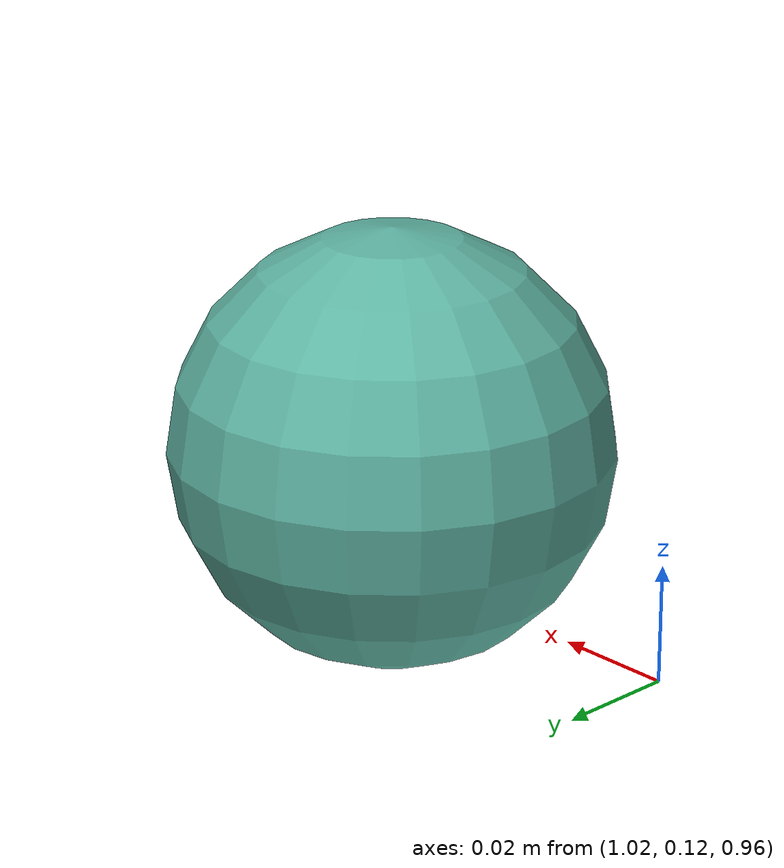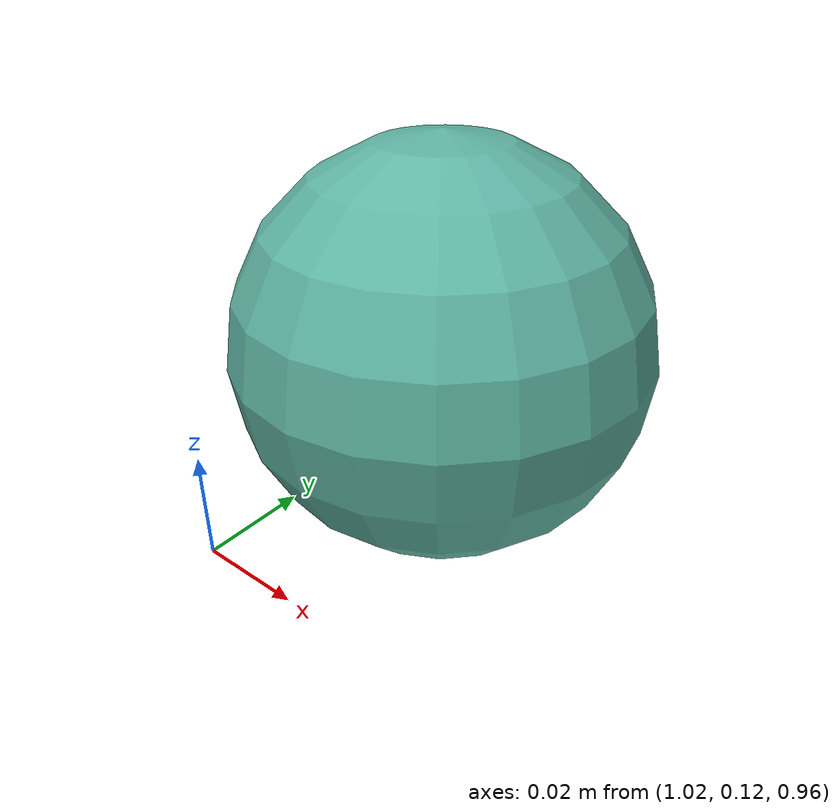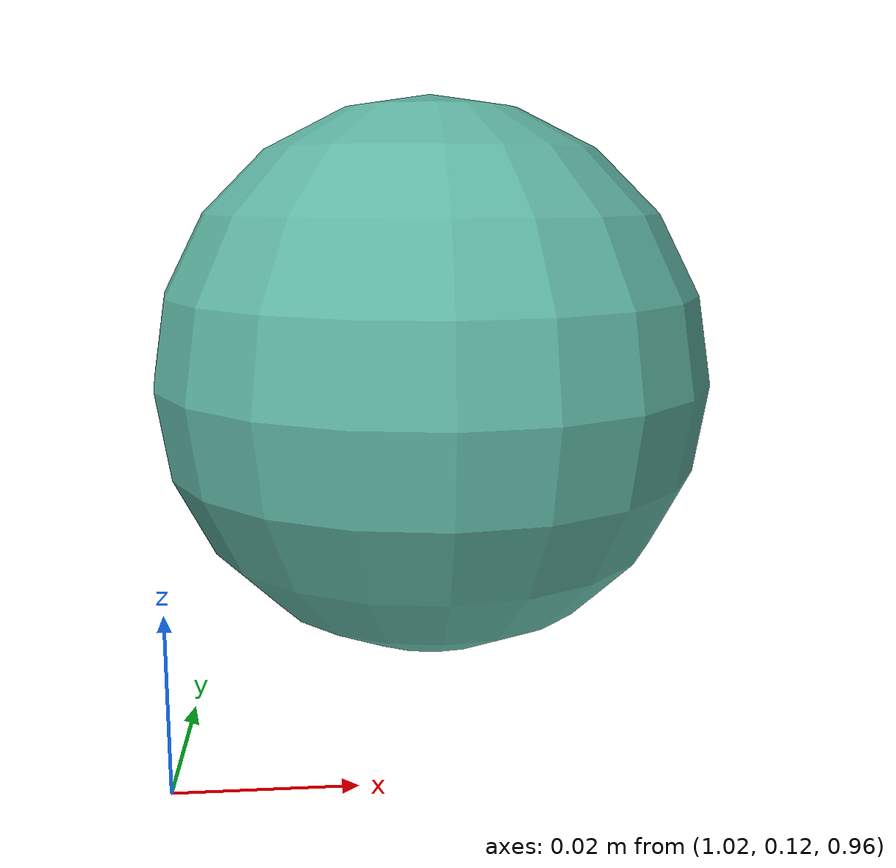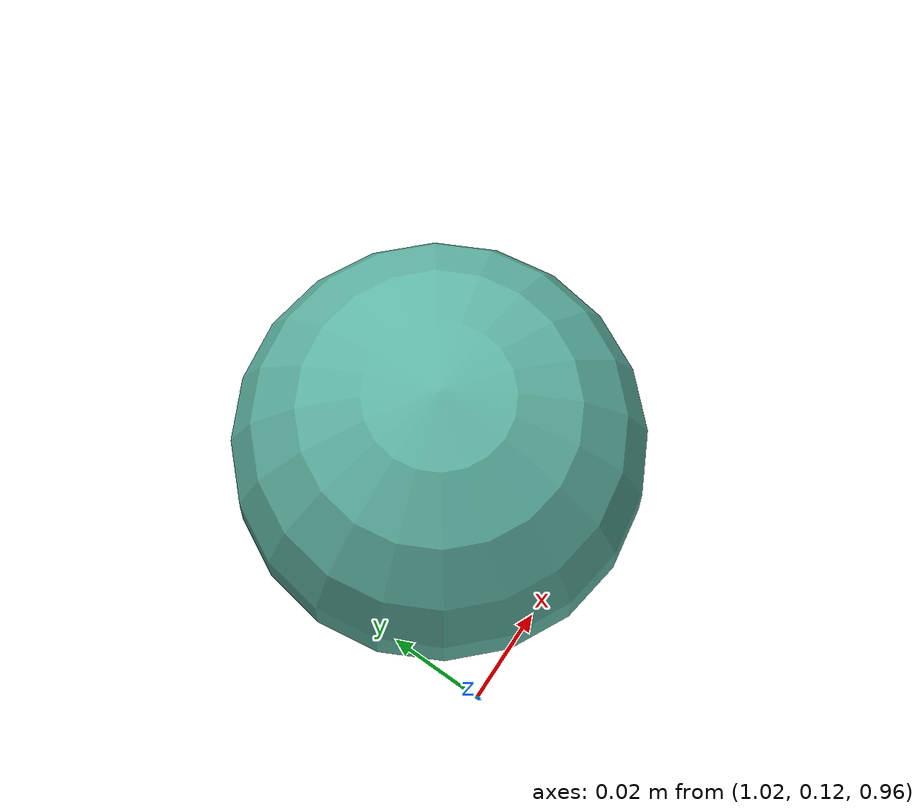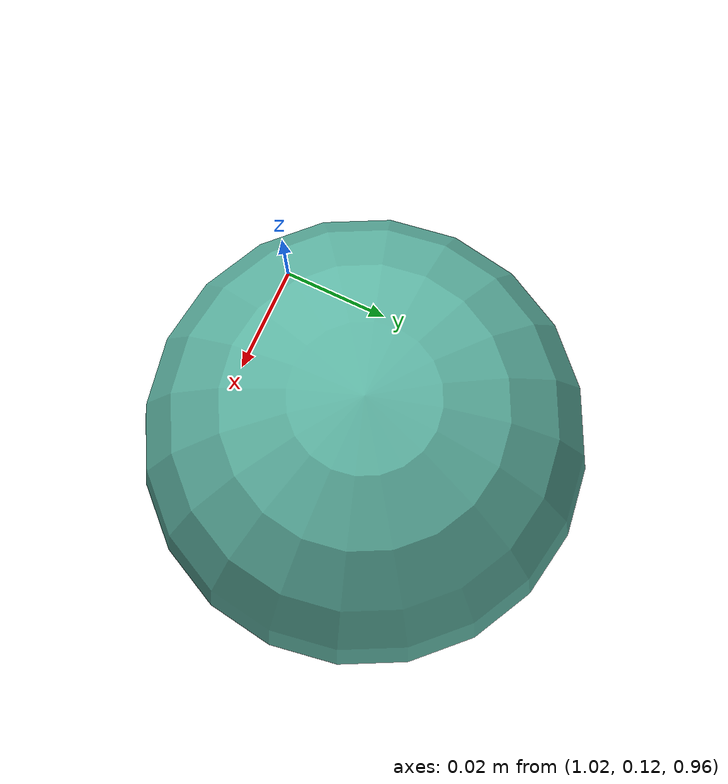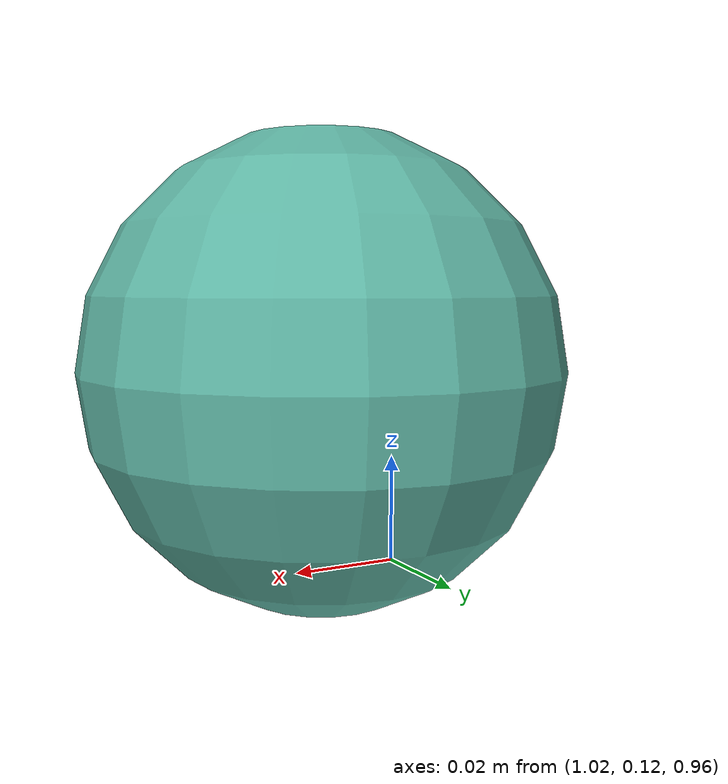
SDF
<?xml version="1.0"?>
<sdf version="1.7">
  <model name="ball">
    <pose>1.05 .15 1 0 0 0</pose>
    <link name="ball">
      <inertial>
        <mass>.001</mass>
      </inertial>
      <visual name="ball">
        <geometry>
          <sphere>
            <radius>0.035</radius>
          </sphere>
        </geometry>
        <material>
          <diffuse>0.36570588 0.70196078 0.6352941176 1.0</diffuse>
        </material>
      </visual>
      <collision name="ball_collision">
        <geometry>
          <sphere>
            <radius>0.035</radius>
          </sphere>
        </geometry>
        <drake:proximity_properties>
          <drake:hunt_crossley_dissipation>0.1</drake:hunt_crossley_dissipation>
        </drake:proximity_properties>
        <surface>
            <bounce>
                <restitution_coefficient> .5 </restitution_coefficient>
                <threshold>0.</threshold>
            </bounce>
            <friction>
              <ode>
                <mu>0.3</mu>
                <mu2>0.3</mu2>
              </ode>
            </friction>
        </surface>
      </collision>
    </link>
  </model>
</sdf>
